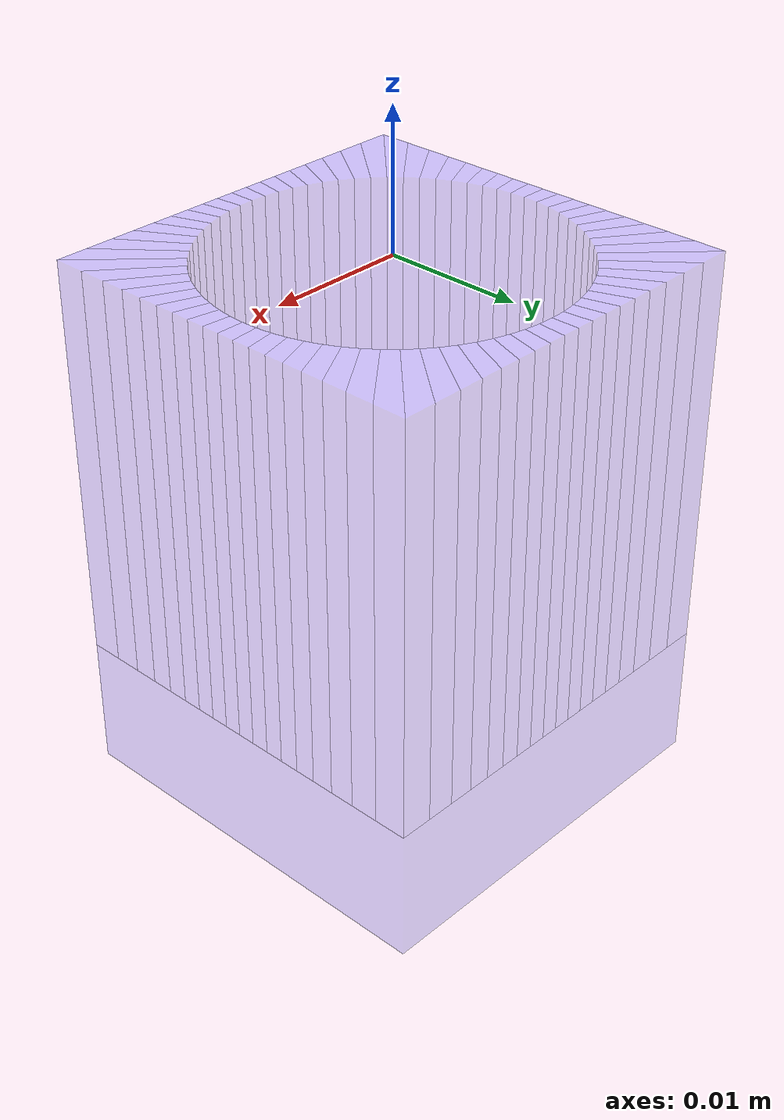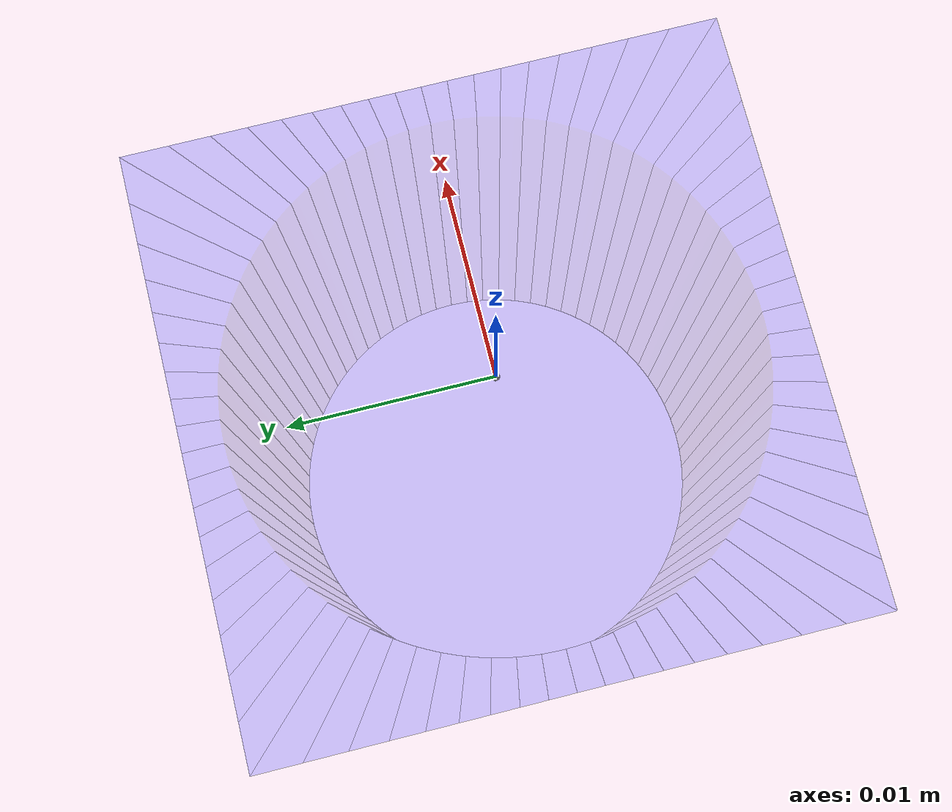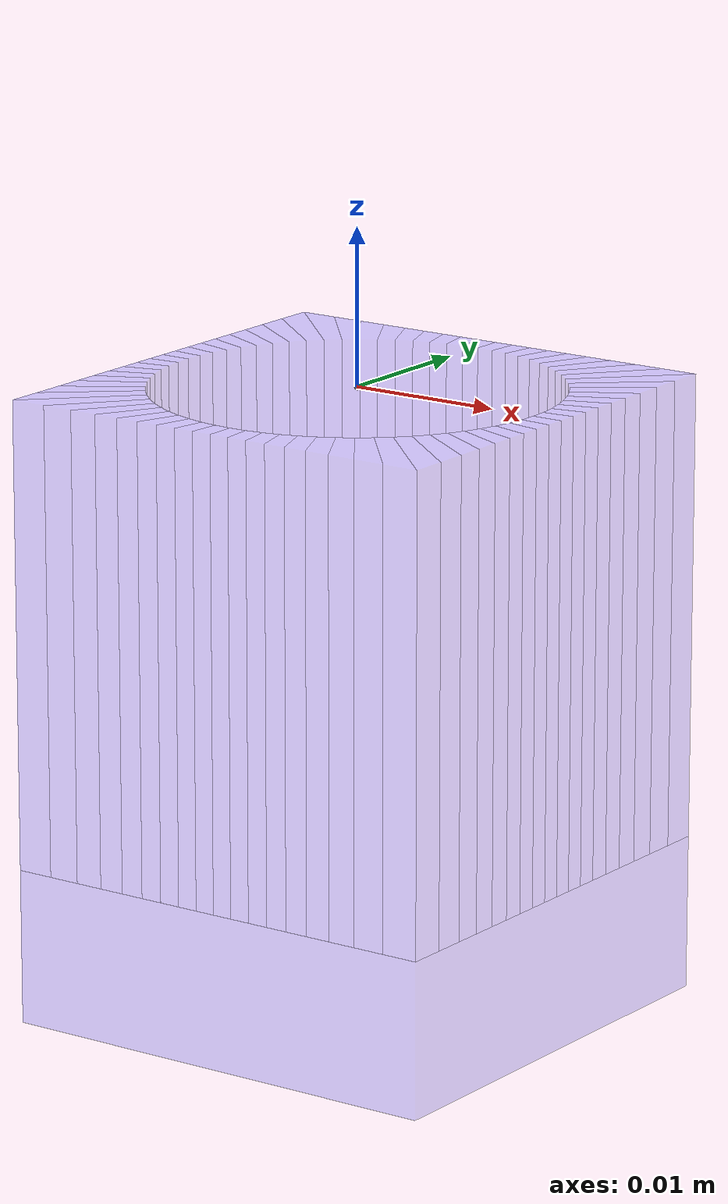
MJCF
<mujoco>
    <option timestep=".001">
        <flag energy="enable" contact="enable" override="enable"/>
    </option>

    <default>
        <default class="hole_geom">
            <geom xyaxes="1 0 0 0 1 0" rgba="0 0 1 0.2"/>
        </default>
        <site size="0.0002" />
        <geom friction="10000" />
    </default>

    <visual>
        <global offwidth="960" offheight="720"/>
    </visual>

    <asset>
        <mesh name="peg1" file="../asset/circle/circle_peg_A/Body1.stl" />
        <mesh name="peg2" file="../asset/circle/circle_peg_A/Body2.stl" />
        <mesh name="peg3" file="../asset/circle/circle_peg_A/Body3.stl" />

        <mesh name="hole1" file="../asset/circle/circle_hole_A/Body1.stl" />
        <mesh name="hole2" file="../asset/circle/circle_hole_A/Body2.stl" />
        <mesh name="hole3" file="../asset/circle/circle_hole_A/Body3.stl" />
        <mesh name="hole4" file="../asset/circle/circle_hole_A/Body4.stl" />
        <mesh name="hole5" file="../asset/circle/circle_hole_A/Body5.stl" />
        <mesh name="hole6" file="../asset/circle/circle_hole_A/Body6.stl" />
        <mesh name="hole7" file="../asset/circle/circle_hole_A/Body7.stl" />
        <mesh name="hole8" file="../asset/circle/circle_hole_A/Body8.stl" />
        <mesh name="hole9" file="../asset/circle/circle_hole_A/Body9.stl" />
        <mesh name="hole10" file="../asset/circle/circle_hole_A/Body10.stl" />
        <mesh name="hole11" file="../asset/circle/circle_hole_A/Body11.stl" />
        <mesh name="hole12" file="../asset/circle/circle_hole_A/Body12.stl" />
        <mesh name="hole13" file="../asset/circle/circle_hole_A/Body13.stl" />
        <mesh name="hole14" file="../asset/circle/circle_hole_A/Body14.stl" />
        <mesh name="hole15" file="../asset/circle/circle_hole_A/Body15.stl" />
        <mesh name="hole16" file="../asset/circle/circle_hole_A/Body16.stl" />
        <mesh name="hole17" file="../asset/circle/circle_hole_A/Body17.stl" />
        <mesh name="hole18" file="../asset/circle/circle_hole_A/Body18.stl" />
        <mesh name="hole19" file="../asset/circle/circle_hole_A/Body19.stl" />
        <mesh name="hole20" file="../asset/circle/circle_hole_A/Body20.stl" />
        <mesh name="hole21" file="../asset/circle/circle_hole_A/Body21.stl" />
        <mesh name="hole22" file="../asset/circle/circle_hole_A/Body22.stl" />
        <mesh name="hole23" file="../asset/circle/circle_hole_A/Body23.stl" />
        <mesh name="hole24" file="../asset/circle/circle_hole_A/Body24.stl" />
        <mesh name="hole25" file="../asset/circle/circle_hole_A/Body25.stl" />
        <mesh name="hole26" file="../asset/circle/circle_hole_A/Body26.stl" />
        <mesh name="hole27" file="../asset/circle/circle_hole_A/Body27.stl" />
        <mesh name="hole28" file="../asset/circle/circle_hole_A/Body28.stl" />
        <mesh name="hole29" file="../asset/circle/circle_hole_A/Body29.stl" />
        <mesh name="hole30" file="../asset/circle/circle_hole_A/Body30.stl" />
        <mesh name="hole31" file="../asset/circle/circle_hole_A/Body31.stl" />
        <mesh name="hole32" file="../asset/circle/circle_hole_A/Body32.stl" />
        <mesh name="hole33" file="../asset/circle/circle_hole_A/Body33.stl" />
        <mesh name="hole34" file="../asset/circle/circle_hole_A/Body34.stl" />
        <mesh name="hole35" file="../asset/circle/circle_hole_A/Body35.stl" />
        <mesh name="hole36" file="../asset/circle/circle_hole_A/Body36.stl" />
        <mesh name="hole37" file="../asset/circle/circle_hole_A/Body37.stl" />
        <mesh name="hole38" file="../asset/circle/circle_hole_A/Body38.stl" />
        <mesh name="hole39" file="../asset/circle/circle_hole_A/Body39.stl" />
        <mesh name="hole40" file="../asset/circle/circle_hole_A/Body40.stl" />
        <mesh name="hole41" file="../asset/circle/circle_hole_A/Body41.stl" />
        <mesh name="hole42" file="../asset/circle/circle_hole_A/Body42.stl" />
        <mesh name="hole43" file="../asset/circle/circle_hole_A/Body43.stl" />
        <mesh name="hole44" file="../asset/circle/circle_hole_A/Body44.stl" />
        <mesh name="hole45" file="../asset/circle/circle_hole_A/Body45.stl" />
        <mesh name="hole46" file="../asset/circle/circle_hole_A/Body46.stl" />
        <mesh name="hole47" file="../asset/circle/circle_hole_A/Body47.stl" />
        <mesh name="hole48" file="../asset/circle/circle_hole_A/Body48.stl" />
        <mesh name="hole49" file="../asset/circle/circle_hole_A/Body49.stl" />
        <mesh name="hole50" file="../asset/circle/circle_hole_A/Body50.stl" />
        <mesh name="hole51" file="../asset/circle/circle_hole_A/Body51.stl" />
        <mesh name="hole52" file="../asset/circle/circle_hole_A/Body52.stl" />
        <mesh name="hole53" file="../asset/circle/circle_hole_A/Body53.stl" />
        <mesh name="hole54" file="../asset/circle/circle_hole_A/Body54.stl" />
        <mesh name="hole55" file="../asset/circle/circle_hole_A/Body55.stl" />
        <mesh name="hole56" file="../asset/circle/circle_hole_A/Body56.stl" />
        <mesh name="hole57" file="../asset/circle/circle_hole_A/Body57.stl" />
        <mesh name="hole58" file="../asset/circle/circle_hole_A/Body58.stl" />
        <mesh name="hole59" file="../asset/circle/circle_hole_A/Body59.stl" />
        <mesh name="hole60" file="../asset/circle/circle_hole_A/Body60.stl" />
        <mesh name="hole61" file="../asset/circle/circle_hole_A/Body61.stl" />
        <mesh name="hole62" file="../asset/circle/circle_hole_A/Body62.stl" />
        <mesh name="hole63" file="../asset/circle/circle_hole_A/Body63.stl" />
        <mesh name="hole64" file="../asset/circle/circle_hole_A/Body64.stl" />
        <mesh name="hole65" file="../asset/circle/circle_hole_A/Body65.stl" />
        <mesh name="hole66" file="../asset/circle/circle_hole_A/Body66.stl" />
        <mesh name="hole67" file="../asset/circle/circle_hole_A/Body67.stl" />
        <mesh name="hole68" file="../asset/circle/circle_hole_A/Body68.stl" />
        <mesh name="hole69" file="../asset/circle/circle_hole_A/Body69.stl" />
        <mesh name="hole70" file="../asset/circle/circle_hole_A/Body70.stl" />
        <mesh name="hole71" file="../asset/circle/circle_hole_A/Body71.stl" />
        <mesh name="hole72" file="../asset/circle/circle_hole_A/Body72.stl" />
        <mesh name="hole73" file="../asset/circle/circle_hole_A/Body73.stl" />

    </asset>

    <worldbody>
        <site name="world" pos="0 0 0" size="0.0001" />

        <light name="top-light" pos="0.0 0.0 0.5" mode="targetbodycom" target="peg" castshadow="false" ambient=".8 .8 .8" />

        <body name="hole" pos="0 0 0">

            <camera name="track" mode="track" pos="-0.050 -0.050 0.025" euler="60 -45 -30" fovy="69.4"/>

            <inertial pos="0 0 0" mass="0.1" diaginertia="0.1 0.1 0.1" />

            <geom type="mesh" mesh="hole1" xyaxes="1 0 0 0 1 0" rgba="0 0 1 0.2"/>
            <geom type="mesh" mesh="hole2" xyaxes="1 0 0 0 1 0" rgba="0 0 1 0.2"/>
            <geom type="mesh" mesh="hole3" xyaxes="1 0 0 0 1 0" rgba="0 0 1 0.2"/>
            <geom type="mesh" mesh="hole4" xyaxes="1 0 0 0 1 0" rgba="0 0 1 0.2"/>
            <geom type="mesh" mesh="hole5" xyaxes="1 0 0 0 1 0" rgba="0 0 1 0.2"/>
            <geom type="mesh" mesh="hole6" xyaxes="1 0 0 0 1 0" rgba="0 0 1 0.2"/>
            <geom type="mesh" mesh="hole7" xyaxes="1 0 0 0 1 0" rgba="0 0 1 0.2"/>
            <geom type="mesh" mesh="hole8" xyaxes="1 0 0 0 1 0" rgba="0 0 1 0.2"/>
            <geom type="mesh" mesh="hole9" xyaxes="1 0 0 0 1 0" rgba="0 0 1 0.2"/>
            <geom type="mesh" mesh="hole10" xyaxes="1 0 0 0 1 0" rgba="0 0 1 0.2"/>
            <geom type="mesh" mesh="hole11" xyaxes="1 0 0 0 1 0" rgba="0 0 1 0.2"/>
            <geom type="mesh" mesh="hole12" xyaxes="1 0 0 0 1 0" rgba="0 0 1 0.2"/>
            <geom type="mesh" mesh="hole13" xyaxes="1 0 0 0 1 0" rgba="0 0 1 0.2"/>
            <geom type="mesh" mesh="hole14" xyaxes="1 0 0 0 1 0" rgba="0 0 1 0.2"/>
            <geom type="mesh" mesh="hole15" xyaxes="1 0 0 0 1 0" rgba="0 0 1 0.2"/>
            <geom type="mesh" mesh="hole16" xyaxes="1 0 0 0 1 0" rgba="0 0 1 0.2"/>
            <geom type="mesh" mesh="hole17" xyaxes="1 0 0 0 1 0" rgba="0 0 1 0.2"/>
            <geom type="mesh" mesh="hole18" xyaxes="1 0 0 0 1 0" rgba="0 0 1 0.2"/>
            <geom type="mesh" mesh="hole19" xyaxes="1 0 0 0 1 0" rgba="0 0 1 0.2"/>
            <geom type="mesh" mesh="hole20" xyaxes="1 0 0 0 1 0" rgba="0 0 1 0.2"/>
            <geom type="mesh" mesh="hole21" xyaxes="1 0 0 0 1 0" rgba="0 0 1 0.2"/>
            <geom type="mesh" mesh="hole22" xyaxes="1 0 0 0 1 0" rgba="0 0 1 0.2"/>
            <geom type="mesh" mesh="hole23" xyaxes="1 0 0 0 1 0" rgba="0 0 1 0.2"/>
            <geom type="mesh" mesh="hole24" xyaxes="1 0 0 0 1 0" rgba="0 0 1 0.2"/>
            <geom type="mesh" mesh="hole25" xyaxes="1 0 0 0 1 0" rgba="0 0 1 0.2"/>
            <geom type="mesh" mesh="hole26" xyaxes="1 0 0 0 1 0" rgba="0 0 1 0.2"/>
            <geom type="mesh" mesh="hole27" xyaxes="1 0 0 0 1 0" rgba="0 0 1 0.2"/>
            <geom type="mesh" mesh="hole28" xyaxes="1 0 0 0 1 0" rgba="0 0 1 0.2"/>
            <geom type="mesh" mesh="hole29" xyaxes="1 0 0 0 1 0" rgba="0 0 1 0.2"/>
            <geom type="mesh" mesh="hole30" xyaxes="1 0 0 0 1 0" rgba="0 0 1 0.2"/>
            <geom type="mesh" mesh="hole31" xyaxes="1 0 0 0 1 0" rgba="0 0 1 0.2"/>
            <geom type="mesh" mesh="hole32" xyaxes="1 0 0 0 1 0" rgba="0 0 1 0.2"/>
            <geom type="mesh" mesh="hole33" xyaxes="1 0 0 0 1 0" rgba="0 0 1 0.2"/>
            <geom type="mesh" mesh="hole34" xyaxes="1 0 0 0 1 0" rgba="0 0 1 0.2"/>
            <geom type="mesh" mesh="hole35" xyaxes="1 0 0 0 1 0" rgba="0 0 1 0.2"/>
            <geom type="mesh" mesh="hole36" xyaxes="1 0 0 0 1 0" rgba="0 0 1 0.2"/>
            <geom type="mesh" mesh="hole37" xyaxes="1 0 0 0 1 0" rgba="0 0 1 0.2"/>
            <geom type="mesh" mesh="hole38" xyaxes="1 0 0 0 1 0" rgba="0 0 1 0.2"/>
            <geom type="mesh" mesh="hole39" xyaxes="1 0 0 0 1 0" rgba="0 0 1 0.2"/>
            <geom type="mesh" mesh="hole40" xyaxes="1 0 0 0 1 0" rgba="0 0 1 0.2"/>
            <geom type="mesh" mesh="hole41" xyaxes="1 0 0 0 1 0" rgba="0 0 1 0.2"/>
            <geom type="mesh" mesh="hole42" xyaxes="1 0 0 0 1 0" rgba="0 0 1 0.2"/>
            <geom type="mesh" mesh="hole43" xyaxes="1 0 0 0 1 0" rgba="0 0 1 0.2"/>
            <geom type="mesh" mesh="hole44" xyaxes="1 0 0 0 1 0" rgba="0 0 1 0.2"/>
            <geom type="mesh" mesh="hole45" xyaxes="1 0 0 0 1 0" rgba="0 0 1 0.2"/>
            <geom type="mesh" mesh="hole46" xyaxes="1 0 0 0 1 0" rgba="0 0 1 0.2"/>
            <geom type="mesh" mesh="hole47" xyaxes="1 0 0 0 1 0" rgba="0 0 1 0.2"/>
            <geom type="mesh" mesh="hole48" xyaxes="1 0 0 0 1 0" rgba="0 0 1 0.2"/>
            <geom type="mesh" mesh="hole49" xyaxes="1 0 0 0 1 0" rgba="0 0 1 0.2"/>
            <geom type="mesh" mesh="hole50" xyaxes="1 0 0 0 1 0" rgba="0 0 1 0.2"/>
            <geom type="mesh" mesh="hole51" xyaxes="1 0 0 0 1 0" rgba="0 0 1 0.2"/>
            <geom type="mesh" mesh="hole52" xyaxes="1 0 0 0 1 0" rgba="0 0 1 0.2"/>
            <geom type="mesh" mesh="hole53" xyaxes="1 0 0 0 1 0" rgba="0 0 1 0.2"/>
            <geom type="mesh" mesh="hole54" xyaxes="1 0 0 0 1 0" rgba="0 0 1 0.2"/>
            <geom type="mesh" mesh="hole55" xyaxes="1 0 0 0 1 0" rgba="0 0 1 0.2"/>
            <geom type="mesh" mesh="hole56" xyaxes="1 0 0 0 1 0" rgba="0 0 1 0.2"/>
            <geom type="mesh" mesh="hole57" xyaxes="1 0 0 0 1 0" rgba="0 0 1 0.2"/>
            <geom type="mesh" mesh="hole58" xyaxes="1 0 0 0 1 0" rgba="0 0 1 0.2"/>
            <geom type="mesh" mesh="hole59" xyaxes="1 0 0 0 1 0" rgba="0 0 1 0.2"/>
            <geom type="mesh" mesh="hole60" xyaxes="1 0 0 0 1 0" rgba="0 0 1 0.2"/>
            <geom type="mesh" mesh="hole61" xyaxes="1 0 0 0 1 0" rgba="0 0 1 0.2"/>
            <geom type="mesh" mesh="hole62" xyaxes="1 0 0 0 1 0" rgba="0 0 1 0.2"/>
            <geom type="mesh" mesh="hole63" xyaxes="1 0 0 0 1 0" rgba="0 0 1 0.2"/>
            <geom type="mesh" mesh="hole64" xyaxes="1 0 0 0 1 0" rgba="0 0 1 0.2"/>
            <geom type="mesh" mesh="hole65" xyaxes="1 0 0 0 1 0" rgba="0 0 1 0.2"/>
            <geom type="mesh" mesh="hole66" xyaxes="1 0 0 0 1 0" rgba="0 0 1 0.2"/>
            <geom type="mesh" mesh="hole67" xyaxes="1 0 0 0 1 0" rgba="0 0 1 0.2"/>
            <geom type="mesh" mesh="hole68" xyaxes="1 0 0 0 1 0" rgba="0 0 1 0.2"/>
            <geom type="mesh" mesh="hole69" xyaxes="1 0 0 0 1 0" rgba="0 0 1 0.2"/>
            <geom type="mesh" mesh="hole70" xyaxes="1 0 0 0 1 0" rgba="0 0 1 0.2"/>
            <geom type="mesh" mesh="hole71" xyaxes="1 0 0 0 1 0" rgba="0 0 1 0.2"/>
            <geom type="mesh" mesh="hole72" xyaxes="1 0 0 0 1 0" rgba="0 0 1 0.2"/>
            <geom type="mesh" mesh="hole73" xyaxes="1 0 0 0 1 0" rgba="0 0 1 0.2"/>

        </body>

        <body name="peg" pos="0 0 0">
            <inertial pos="0 0 0" mass="1.0" diaginertia="0.1 0.1 0.1" />

            <site name="peg/origin" pos="0 0 0" />
            <site name="peg/sensor" pos="0 0 0" />

            <geom type="mesh" mesh="peg1" xyaxes="1 0 0 0 1 0" rgba="1 0 0 0.8"/>
            <geom type="mesh" mesh="peg2" xyaxes="1 0 0 0 1 0" rgba="1 0 0 0.8"/>
            <geom type="mesh" mesh="peg3" xyaxes="1 0 0 0 1 0" rgba="1 0 0 0.8"/>

            <joint name="trans_x" type="slide" axis="1 0 0" limited="false"/>
            <joint name="trans_y" type="slide" axis="0 1 0" limited="false"/>
            <joint name="trans_z" type="slide" axis="0 0 1" limited="false"/>
            <joint name="hinge_x" type="hinge" axis="1 0 0" limited="false"/>
            <joint name="hinge_y" type="hinge" axis="0 1 0" limited="false"/>
            <joint name="hinge_z" type="hinge" axis="0 0 1" limited="false"/>
        </body>

    </worldbody>

    <actuator>
        <position name="x" forcelimited="true" forcerange="-20 20" joint="trans_x" kp="100000" kv="100" />
        <position name="y" forcelimited="true" forcerange="-20 20" joint="trans_y" kp="100000" kv="100" />
        <position name="z" forcelimited="true" forcerange="-20 20" joint="trans_z" kp="100000" kv="100" />
        <position name="rx" forcelimited="true" forcerange="-5 5" joint="hinge_x" kp="50" kv="5" />
        <position name="ry" forcelimited="true" forcerange="-5 5" joint="hinge_y" kp="50" kv="5"/>
        <position name="rz" forcelimited="true" forcerange="-5 5" joint="hinge_z" kp="50" kv="5"/>
    </actuator>

    <sensor>
        <force name="force_sensor" site="peg/sensor" />
        <torque name="torque_sensor" site="peg/sensor" />
        <framepos name="peg_pos" objtype="site" objname="peg/origin"/>
        <framequat name="peg_quat" objtype="site" objname="peg/origin"/>
    </sensor>
</mujoco>
